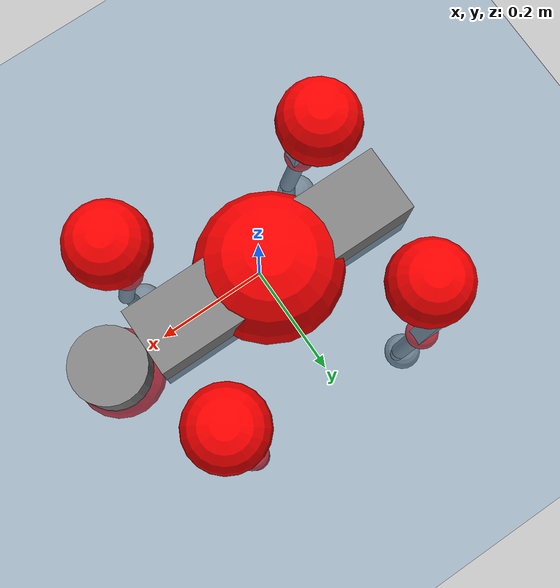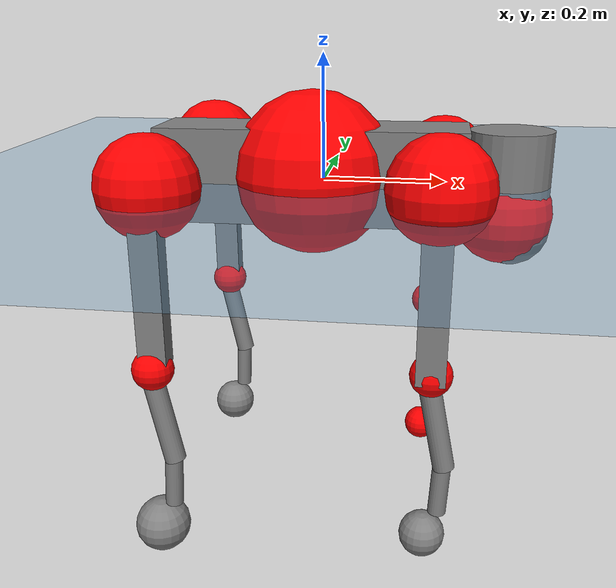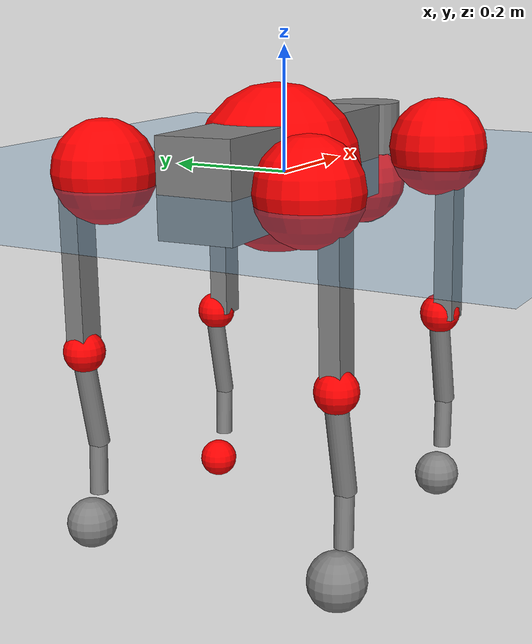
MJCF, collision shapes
<mujoco model="go2">
  <compiler angle="radian" assetdir="assets" balanceinertia="true" inertiafromgeom="false"/>

  <option timestep="0.005" density="1.2" viscosity="2e-05"/>

  <size nkey="1"/>

  <visual>
    <quality shadowsize="8192"/>
    <map shadowclip="0.5"/>
  </visual>

  <default>
    <default class="/">
      <geom contype="0" conaffinity="0" group="1" solref="-1000 -80"/>
      <site size="0.01 0.005 0.005" group="5"/>
      <general forcelimited="true" biastype="affine" gainprm="20" biasprm="0 -20 -0.5"/>
      <default class="go2">
        <joint armature="0.01" damping="0.01" frictionloss="0.2"/>
        <geom condim="1" margin="0.001"/>
        <default class="visual">
          <geom type="mesh" group="2"/>
        </default>
        <default class="collision">
          <geom group="3"/>
          <default class="foot">
            <geom size="0.022 0 0" condim="6" priority="1" friction="0.8 0.02 0.01" solimp="0.015 1 0.022"/>
          </default>
        </default>
        <default class="reward_collision_sphere">
          <geom group="5" rgba="1 0 0 1"/>
        </default>
      </default>
    </default>
  </default>

  <asset>
    <texture type="skybox" colorspace="auto" name="//unnamed_texture_0" builtin="gradient" rgb1="0.95 0.95 0.95" rgb2="0.95 0.95 0.95" width="100" height="600"/>
    <texture type="2d" colorspace="auto" name="texplane" builtin="checker" rgb1="0.345 0.575 0.748" rgb2="0.345 0.575 0.748" markrgb="1 1 1" width="512" height="512"/>
    <material name="MatPlane" class="/" texture="texplane" texuniform="true" texrepeat="2 2" specular="0.9"/>
    <material name="metal" class="/" rgba="0.9 0.95 0.95 1"/>
    <material name="black" class="/" rgba="0 0 0 1"/>
    <material name="white" class="/"/>
    <material name="gray" class="/" rgba="0.671705 0.692426 0.77427 1"/>
    <mesh name="base_0" class="/" file="base_0.obj"/>
    <mesh name="base_1" class="/" file="base_1.obj"/>
    <mesh name="base_2" class="/" file="base_2.obj"/>
    <mesh name="base_3" class="/" file="base_3.obj"/>
    <mesh name="base_4" class="/" file="base_4.obj"/>
    <mesh name="hip_0" class="/" file="hip_0.obj"/>
    <mesh name="hip_1" class="/" file="hip_1.obj"/>
    <mesh name="thigh_0" class="/" file="thigh_0.obj"/>
    <mesh name="thigh_1" class="/" file="thigh_1.obj"/>
    <mesh name="thigh_mirror_0" class="/" file="thigh_mirror_0.obj"/>
    <mesh name="thigh_mirror_1" class="/" file="thigh_mirror_1.obj"/>
    <mesh name="calf_0" class="/" file="calf_0.obj"/>
    <mesh name="calf_1" class="/" file="calf_1.obj"/>
    <mesh name="calf_mirror_0" class="/" file="calf_mirror_0.obj"/>
    <mesh name="calf_mirror_1" class="/" file="calf_mirror_1.obj"/>
    <mesh name="foot" class="/" file="foot.obj"/>
  </asset>

  <worldbody>
    <geom name="floor" class="/" size="100 100 0.125" type="plane" group="0" material="MatPlane"/>
    <light name="toplight_shadow" class="/" pos="0 0 5" dir="0.0990148 0.0990148 -0.990148" type="directional" ambient="0.04 0.04 0.04" diffuse="0.55 0.55 0.55" specular="0.12 0.12 0.12"/>
    <light name="toplight_fill" class="/" pos="0 0 5" dir="0.0990148 0.0990148 -0.990148" type="directional" castshadow="false" ambient="0.04 0.04 0.04" diffuse="0.3 0.3 0.3" specular="0.08 0.08 0.08"/>
    <body name="trunk" childclass="go2" pos="-0.0174309 0.00314984 0.00972427" quat="0.999968 -0.0075176 -0.00212504 -0.00166094">
      <inertial pos="0.0403651 -0.00940264 -0.00242376" quat="-0.0237717 0.70606 0.0068386 0.70772" mass="18.3027" diaginertia="0.16609 0.794191 0.0911696"/>
      <joint name="//unnamed_joint_0" type="free" armature="0" damping="0" frictionloss="0"/>
      <geom name="//unnamed_geom_1" class="visual" material="black" mesh="base_0"/>
      <geom name="//unnamed_geom_2" class="visual" material="black" mesh="base_1"/>
      <geom name="//unnamed_geom_3" class="visual" material="black" mesh="base_2"/>
      <geom name="//unnamed_geom_4" class="visual" material="white" mesh="base_3"/>
      <geom name="//unnamed_geom_5" class="visual" material="gray" mesh="base_4"/>
      <geom name="trunk_1" class="collision" size="0.253118 0.0629095 0.0767025" type="box"/>
      <geom name="trunk_2" class="collision" size="0.0672829 0.0605546" pos="0.319261 0 0.0136126" type="cylinder"/>
      <geom name="trunk_3" class="collision" size="0.063246" pos="0.328223 0 -0.0816755"/>
      <geom name="//unnamed_geom_9" class="reward_collision_sphere" size="0.134566"/>
      <geom name="//unnamed_geom_10" class="reward_collision_sphere" size="0.0807395" pos="0.31366 0 -0.0612566"/>
      <site name="imu" pos="-0.0115464 -0.0532372 -0.0200284" size="0.0134566"/>
      <camera name="track" pos="0 -3.11101 0" quat="0.707107 0.707107 0 0" mode="trackcom"/>
      <camera name="ego_camera" pos="0.349507 0 0.0612566" quat="-0.5 -0.5 0.5 0.5"/>
      <body name="FL_hip" pos="0.215878 0.0793685 -0.00894431" quat="0.999989 -0.00288081 0.00108885 0.00360729">
        <inertial pos="-0.0120368 0.0159837 0.00435335" quat="0.502307 0.500578 0.514251 0.482344" mass="1.71369" diaginertia="0.00112642 0.00437371 0.00222274"/>
        <joint name="FL_hip_joint" pos="0 0 0" axis="0.996307 -0.0299847 0.0804509" stiffness="0.0420682" range="-1.38587 1.12797" armature="0.0139455" damping="0" frictionloss="0.266352"/>
        <geom name="//unnamed_geom_11" class="visual" material="metal" mesh="hip_0"/>
        <geom name="//unnamed_geom_12" class="visual" material="gray" mesh="hip_1"/>
        <geom name="//unnamed_geom_13" class="collision" size="0.0619003 0.0269132" pos="0 0.12444 0" quat="0.707107 0.707107 0 0" type="cylinder"/>
        <geom name="//unnamed_geom_14" class="reward_collision_sphere" size="0.0807395" pos="0 0.108885 0"/>
        <body name="FL_thigh" pos="-0.0100588 0.145047 -0.0108253" quat="0.999973 0.00539616 0.00188476 0.00455683">
          <inertial pos="-0.0169265 -0.0228825 -0.028713" quat="0.830379 0.0829369 -0.0175994 0.550711" mass="3.3795" diaginertia="0.0106727 0.0593084 0.00370728"/>
          <joint name="FL_thigh_joint" pos="0 0 0" axis="0.00509577 0.999222 -0.039101" stiffness="0.0885933" range="-1.7591 3.50482" armature="0.0198212" damping="0.000198637" frictionloss="0.377043"/>
          <geom name="//unnamed_geom_15" class="visual" material="metal" mesh="thigh_0"/>
          <geom name="//unnamed_geom_16" class="visual" material="gray" mesh="thigh_1"/>
          <geom name="//unnamed_geom_17" class="collision" size="0.143313 0.0164843 0.0228762" pos="0 0 -0.144974" quat="0.707107 0 0.707107 0" type="box"/>
          <body name="FL_calf" pos="-0.0041881 0.0159259 -0.28767" quat="0.999983 -0.00156275 0.0033922 -0.00444386">
            <inertial pos="0.0212117 -0.000138493 -0.204691" quat="0.733235 0.0278406 -0.0126971 0.679287" mass="0.5577" diaginertia="0.00233029 0.0088322 0.000175519"/>
            <joint name="FL_calf_joint" pos="0 0 0" axis="-0.0367743 0.999188 0.0164533" range="-2.40682 -0.894518" armature="0.00706582" damping="0.0859748" frictionloss="0.129452"/>
            <geom name="//unnamed_geom_18" class="visual" material="gray" mesh="calf_0"/>
            <geom name="//unnamed_geom_19" class="visual" material="black" mesh="calf_1"/>
            <geom name="FL_calf0" class="collision" size="0.0161479 0.0807395" pos="0.00896171 0 -0.0816755" quat="0.994493 0 -0.104807 0" type="cylinder"/>
            <geom name="//unnamed_geom_21" class="collision" size="0.0148022 0.0437339" pos="0.0224043 0 -0.201466" quat="0.999688 0 0.0249974 0" type="cylinder"/>
            <geom name="//unnamed_geom_22" class="visual" pos="0 0 -0.289948" quat="1 0 0 0" material="black" mesh="foot"/>
            <geom name="FL_foot" class="foot" size="0.0235218" pos="-0.00224043 0 -0.289948"/>
            <geom name="//unnamed_geom_24" class="reward_collision_sphere" size="0.0336415"/>
            <geom name="//unnamed_geom_25" class="reward_collision_sphere" size="0.0336415" pos="-0.00224043 0 -0.289948"/>
            <site name="FL_foot" class="foot" pos="-0.00224043 0 -0.289948" size="0.0134566"/>
          </body>
        </body>
      </body>
      <body name="FR_hip" pos="0.212244 -0.0794717 0.0160843" quat="0.999977 -0.00135141 0.00219257 -0.00624222">
        <inertial pos="-0.0163533 0.0121007 6.929e-06" quat="0.478136 0.5423 0.448417 0.525565" mass="1.65595" diaginertia="0.00206355 0.00613722 0.00292638"/>
        <joint name="FR_hip_joint" pos="0 0 0" axis="0.998622 -0.00815187 0.0518425" stiffness="0.0325343" range="-1.20506 1.05041" armature="0.00896234" damping="0" frictionloss="0.465325"/>
        <geom name="//unnamed_geom_26" class="visual" pos="0 1.69219e-09 7.25814e-08" quat="4.63268e-05 1 0 0" material="metal" mesh="hip_0"/>
        <geom name="//unnamed_geom_27" class="visual" pos="0 2.74324e-09 -1.79522e-07" quat="4.63268e-05 1 0 0" material="gray" mesh="hip_1"/>
        <geom name="//unnamed_geom_28" class="collision" size="0.0619003 0.0269132" pos="0 -0.12444 0" quat="0.707107 0.707107 0 0" type="cylinder"/>
        <geom name="//unnamed_geom_29" class="reward_collision_sphere" size="0.0807395" pos="0 -0.108885 0"/>
        <body name="FR_thigh" pos="-0.000545393 -0.131333 -0.00135243" quat="0.999999 0.000537518 0.000840581 -0.000424901">
          <inertial pos="-0.0149707 0.0480522 -0.0408384" quat="0.566363 -0.0753929 0.094385 0.815255" mass="2.69688" diaginertia="0.0123229 0.065504 0.00378777"/>
          <joint name="FR_thigh_joint" pos="0 0 0" axis="4.44988e-05 -0.999994 -0.00347651" stiffness="0.0550603" range="-3.40473 1.29163" armature="0.0130593" damping="0.0371434" frictionloss="0.143783"/>
          <geom name="//unnamed_geom_30" class="visual" material="metal" mesh="thigh_mirror_0"/>
          <geom name="//unnamed_geom_31" class="visual" material="gray" mesh="thigh_mirror_1"/>
          <geom name="//unnamed_geom_32" class="collision" size="0.143313 0.0164843 0.0228762" pos="0 0 -0.144974" quat="0.707107 0 0.707107 0" type="box"/>
          <body name="FR_calf" pos="0.000557447 0.0138639 -0.282235" quat="1 0.000157473 -6.92534e-05 -3.89569e-05">
            <inertial pos="0.0078773 -0.00199184 -0.19409" quat="0.751897 1.06313e-05 -0.0270701 0.658724" mass="0.610624" diaginertia="0.00263774 0.0133682 0.000290211"/>
            <joint name="FR_calf_joint" pos="0 0 0" axis="0.0427889 -0.996621 -0.0701187" stiffness="0.0741143" range="0.782012 2.46964" armature="0.01898" damping="0" frictionloss="0.387116"/>
            <geom name="//unnamed_geom_33" class="visual" material="gray" mesh="calf_mirror_0"/>
            <geom name="//unnamed_geom_34" class="visual" material="black" mesh="calf_mirror_1"/>
            <geom name="FR_calf0" class="collision" size="0.0174936 0.0807395" pos="0.0112021 0 -0.0816755" quat="0.995004 0 -0.0998334 0" type="cylinder"/>
            <geom name="//unnamed_geom_36" class="collision" size="0.0148022 0.0437339" pos="0.0224043 0 -0.201466" quat="0.999688 0 0.0249974 0" type="cylinder"/>
            <geom name="//unnamed_geom_37" class="visual" pos="0 0 -0.289948" quat="1 0 0 0" material="black" mesh="foot"/>
            <geom name="FR_foot" class="foot" size="0.0375987" pos="-0.00224043 0 -0.289948"/>
            <geom name="//unnamed_geom_39" class="reward_collision_sphere" size="0.0336415"/>
            <geom name="//unnamed_geom_40" class="reward_collision_sphere" size="0.0336415" pos="-0.00224043 0 -0.289948"/>
            <site name="FR_foot" class="foot" pos="-0.00224043 0 -0.289948" size="0.0134566"/>
          </body>
        </body>
      </body>
      <body name="RL_hip" pos="-0.215406 0.071385 0.0131336" quat="1 0.000628047 5.42936e-05 -0.000666817">
        <inertial pos="-0.002375 -0.0134618 0.012909" quat="0.547754 0.540264 0.455252 0.448137" mass="1.21978" diaginertia="0.00138046 0.00515059 0.0016723"/>
        <joint name="RL_hip_joint" pos="0 0 0" axis="-0.999967 0.00622107 -0.00514341" range="-0.957079 1.2717" armature="0.0222545" damping="0.0389994" frictionloss="0.0632735"/>
        <geom name="//unnamed_geom_41" class="visual" pos="2.09988e-09 0 4.11625e-07" quat="4.63268e-05 0 1 0" material="metal" mesh="hip_0"/>
        <geom name="//unnamed_geom_42" class="visual" pos="3.40416e-09 0 3.65053e-07" quat="4.63268e-05 0 1 0" material="gray" mesh="hip_1"/>
        <geom name="//unnamed_geom_43" class="collision" size="0.0619003 0.0269132" pos="0 0.12444 0" quat="0.707107 0.707107 0 0" type="cylinder"/>
        <geom name="//unnamed_geom_44" class="reward_collision_sphere" size="0.0807395" pos="0 0.108885 0"/>
        <body name="RL_thigh" pos="-0.00156341 0.163463 -0.0152524" quat="0.999998 -0.00107225 0.00103216 -0.00160637">
          <inertial pos="-0.00367739 -0.0347181 -0.0496315" quat="0.851329 0.0763371 -0.0230241 0.518538" mass="2.03445" diaginertia="0.00929353 0.0455379 0.00319196"/>
          <joint name="RL_thigh_joint" pos="0 0 0" axis="0.0562423 0.998386 -0.00786082" range="-0.582322 4.47487" armature="0.0051473" damping="0.0683435" frictionloss="0.278383"/>
          <geom name="//unnamed_geom_45" class="visual" material="metal" mesh="thigh_0"/>
          <geom name="//unnamed_geom_46" class="visual" material="gray" mesh="thigh_1"/>
          <geom name="//unnamed_geom_47" class="collision" size="0.143313 0.0164843 0.0228762" pos="0 0 -0.144974" quat="0.707107 0 0.707107 0" type="box"/>
          <body name="RL_calf" pos="-0.000818489 -0.000580652 -0.273909" quat="0.999996 0.00178103 0.000533197 -0.00218633">
            <inertial pos="0.0151102 -0.0179617 -0.195632" quat="0.725813 0.0192916 -0.0476743 0.685967" mass="0.527033" diaginertia="0.00268794 0.0116008 0.00027219"/>
            <joint name="RL_calf_joint" pos="0 0 0" axis="-0.0167568 0.999673 0.0193312" stiffness="0.0875704" range="-2.72831 -1.02579" armature="0.00671852" damping="0.0637541" frictionloss="0.0444076"/>
            <geom name="//unnamed_geom_48" class="visual" material="gray" mesh="calf_0"/>
            <geom name="//unnamed_geom_49" class="visual" material="black" mesh="calf_1"/>
            <geom name="RL_calf0" class="collision" size="0.0174936 0.0807395" pos="0.0112021 0 -0.0816755" quat="0.995004 0 -0.0998334 0" type="cylinder"/>
            <geom name="//unnamed_geom_51" class="collision" size="0.0148022 0.0437339" pos="0.0224043 0 -0.201466" quat="0.999688 0 0.0249974 0" type="cylinder"/>
            <geom name="//unnamed_geom_52" class="visual" pos="0 0 -0.289948" quat="1 0 0 0" material="black" mesh="foot"/>
            <geom name="RL_foot" class="foot" size="0.0408021" pos="-0.00224043 0 -0.289948"/>
            <geom name="//unnamed_geom_54" class="reward_collision_sphere" size="0.0336415"/>
            <geom name="//unnamed_geom_55" class="reward_collision_sphere" size="0.0336415" pos="-0.00224043 0 -0.289948"/>
            <site name="RL_foot" class="foot" pos="-0.00224043 0 -0.289948" size="0.0134566"/>
          </body>
        </body>
      </body>
      <body name="RR_hip" pos="-0.224616 -0.0620892 0.00505755" quat="0.999966 -0.00432493 0.00579227 -0.00392803">
        <inertial pos="-0.0107389 -0.0161056 0.016546" quat="0.475217 0.495503 0.548648 0.477106" mass="1.65687" diaginertia="0.00158603 0.00556046 0.00233504"/>
        <joint name="RR_hip_joint" pos="0 0 0" axis="-0.996321 -0.0488989 -0.0703785" range="-1.2093 0.950896" armature="0.0205174" damping="0.0344266" frictionloss="0.195733"/>
        <geom name="//unnamed_geom_56" class="visual" pos="-2.08481e-09 1.69219e-09 3.39044e-07" quat="2.14617e-09 4.63268e-05 4.63268e-05 -1" material="metal" mesh="hip_0"/>
        <geom name="//unnamed_geom_57" class="visual" pos="-3.44143e-09 2.74324e-09 5.44574e-07" quat="2.14617e-09 4.63268e-05 4.63268e-05 -1" material="gray" mesh="hip_1"/>
        <geom name="//unnamed_geom_58" class="collision" size="0.0619003 0.0269132" pos="0 -0.12444 0" quat="0.707107 0.707107 0 0" type="cylinder"/>
        <geom name="//unnamed_geom_59" class="reward_collision_sphere" size="0.0807395" pos="0 -0.108885 0"/>
        <body name="RR_thigh" pos="0.00668804 -0.145344 0.0168614" quat="1 -3.20636e-05 1.88635e-05 -8.55536e-05">
          <inertial pos="0.000126324 0.0337846 -0.0446079" quat="0.54711 -0.0190074 0.0881939 0.832185" mass="3.3138" diaginertia="0.0111307 0.0451173 0.00407458"/>
          <joint name="RR_thigh_joint" pos="0 0 0" axis="0.0277631 -0.99961 0.00285339" range="-4.53308 0.228782" armature="0.0159936" damping="0.000731562" frictionloss="0.194891"/>
          <geom name="//unnamed_geom_60" class="visual" material="metal" mesh="thigh_mirror_0"/>
          <geom name="//unnamed_geom_61" class="visual" material="gray" mesh="thigh_mirror_1"/>
          <geom name="//unnamed_geom_62" class="collision" size="0.143313 0.0164843 0.0228762" pos="0 0 -0.144974" quat="0.707107 0 0.707107 0" type="box"/>
          <body name="RR_calf" pos="-0.00469779 -0.00210659 -0.299835" quat="0.999999 0.000805147 0.000338882 -0.00130352">
            <inertial pos="0.019968 -0.00327113 -0.190868" quat="0.728295 -0.0417255 -0.00849427 0.68394" mass="0.613006" diaginertia="0.00235772 0.0130408 0.000205008"/>
            <joint name="RR_calf_joint" pos="0 0 0" axis="-0.046029 -0.996985 -0.0624716" stiffness="0.00498508" range="1.00008 2.74655" armature="0.017917" damping="0" frictionloss="0.360561"/>
            <geom name="//unnamed_geom_63" class="visual" material="gray" mesh="calf_mirror_0"/>
            <geom name="//unnamed_geom_64" class="visual" material="black" mesh="calf_mirror_1"/>
            <geom name="RR_calf0" class="collision" size="0.0174936 0.0807395" pos="0.0112021 0 -0.0816755" quat="0.995004 0 -0.0998334 0" type="cylinder"/>
            <geom name="//unnamed_geom_66" class="collision" size="0.0148022 0.0437339" pos="0.0224043 0 -0.201466" quat="0.999688 0 0.0249974 0" type="cylinder"/>
            <geom name="//unnamed_geom_67" class="visual" pos="0 0 -0.289948" quat="1 0 0 0" material="black" mesh="foot"/>
            <geom name="RR_foot" class="foot" size="0.0458424" pos="-0.00224043 0 -0.289948"/>
            <geom name="//unnamed_geom_69" class="reward_collision_sphere" size="0.0336415"/>
            <geom name="//unnamed_geom_70" class="reward_collision_sphere" size="0.0336415" pos="-0.00224043 0 -0.289948"/>
            <site name="RR_foot" class="foot" pos="-0.00224043 0 -0.289948" size="0.0134566"/>
          </body>
        </body>
      </body>
    </body>
  </worldbody>

  <contact>
    <pair class="/" geom1="floor" geom2="FL_foot" name="//unnamed_contact_0"/>
    <pair class="/" geom1="floor" geom2="FR_foot" name="//unnamed_contact_1"/>
    <pair class="/" geom1="floor" geom2="RL_foot" name="//unnamed_contact_2"/>
    <pair class="/" geom1="floor" geom2="RR_foot" name="//unnamed_contact_3"/>
  </contact>

  <actuator>
    <general name="FL_hip" class="/" joint="FL_hip_joint" forcerange="-31.4788 31.4788" gainprm="19.545" biasprm="0 -19.545 -0.881765"/>
    <general name="FL_thigh" class="/" joint="FL_thigh_joint" forcerange="-44.4097 44.4097" gainprm="19.545" biasprm="0 -19.545 -0.881765"/>
    <general name="FL_calf" class="/" joint="FL_calf_joint" forcerange="-71.0688 71.0688" gainprm="19.545" biasprm="0 -19.545 -0.881765"/>
    <general name="FR_hip" class="/" joint="FR_hip_joint" forcerange="-34.8161 34.8161" gainprm="19.545" biasprm="0 -19.545 -0.881765"/>
    <general name="FR_thigh" class="/" joint="FR_thigh_joint" forcerange="-19.5107 19.5107" gainprm="19.545" biasprm="0 -19.545 -0.881765"/>
    <general name="FR_calf" class="/" joint="FR_calf_joint" forcerange="-63.4214 63.4214" gainprm="19.545" biasprm="0 -19.545 -0.881765"/>
    <general name="RL_hip" class="/" joint="RL_hip_joint" forcerange="-12.2615 12.2615" gainprm="19.545" biasprm="0 -19.545 -0.881765"/>
    <general name="RL_thigh" class="/" joint="RL_thigh_joint" forcerange="-43.9362 43.9362" gainprm="19.545" biasprm="0 -19.545 -0.881765"/>
    <general name="RL_calf" class="/" joint="RL_calf_joint" forcerange="-98.7431 98.7431" gainprm="19.545" biasprm="0 -19.545 -0.881765"/>
    <general name="RR_hip" class="/" joint="RR_hip_joint" forcerange="-46.438 46.438" gainprm="19.545" biasprm="0 -19.545 -0.881765"/>
    <general name="RR_thigh" class="/" joint="RR_thigh_joint" forcerange="-12.7882 12.7882" gainprm="19.545" biasprm="0 -19.545 -0.881765"/>
    <general name="RR_calf" class="/" joint="RR_calf_joint" forcerange="-50.9111 50.9111" gainprm="19.545" biasprm="0 -19.545 -0.881765"/>
  </actuator>

  <sensor>
    <gyro site="imu" name="imu_angular_velocity"/>
    <velocimeter site="imu" name="imu_linear_velocity"/>
    <framelinvel objtype="site" objname="FL_foot" name="FL_foot_global_linear_velocity"/>
    <framelinvel objtype="site" objname="FR_foot" name="FR_foot_global_linear_velocity"/>
    <framelinvel objtype="site" objname="RL_foot" name="RL_foot_global_linear_velocity"/>
    <framelinvel objtype="site" objname="RR_foot" name="RR_foot_global_linear_velocity"/>
  </sensor>

  <keyframe>
    <key name="home" qpos="0 0 0.325 1 0 0 0 0.1 0.8 -1.5 -0.1 -0.8 1.5 -0.1 0.8 -1.5 0.1 -0.8 1.5"/>
  </keyframe>
</mujoco>
